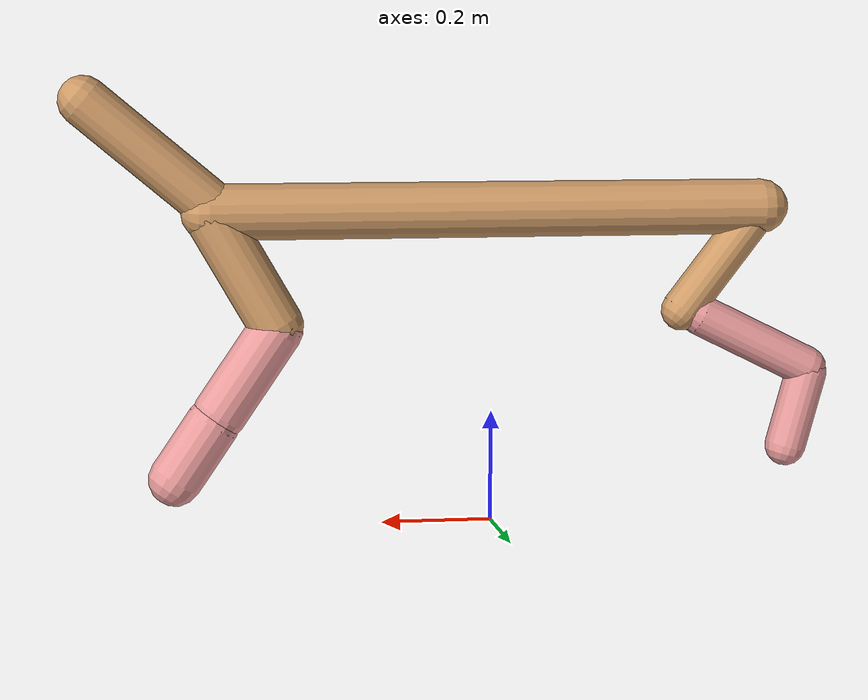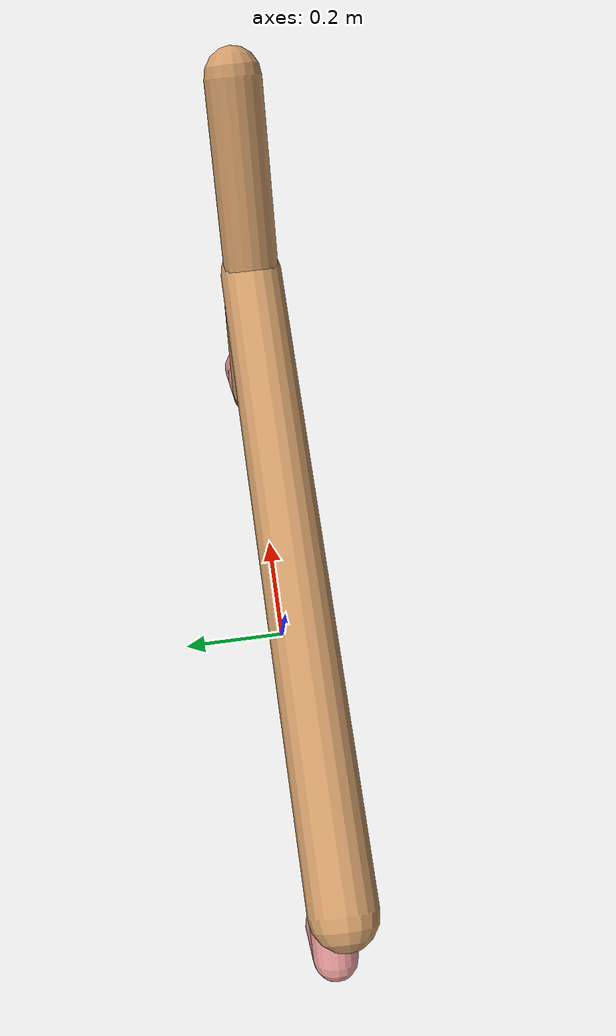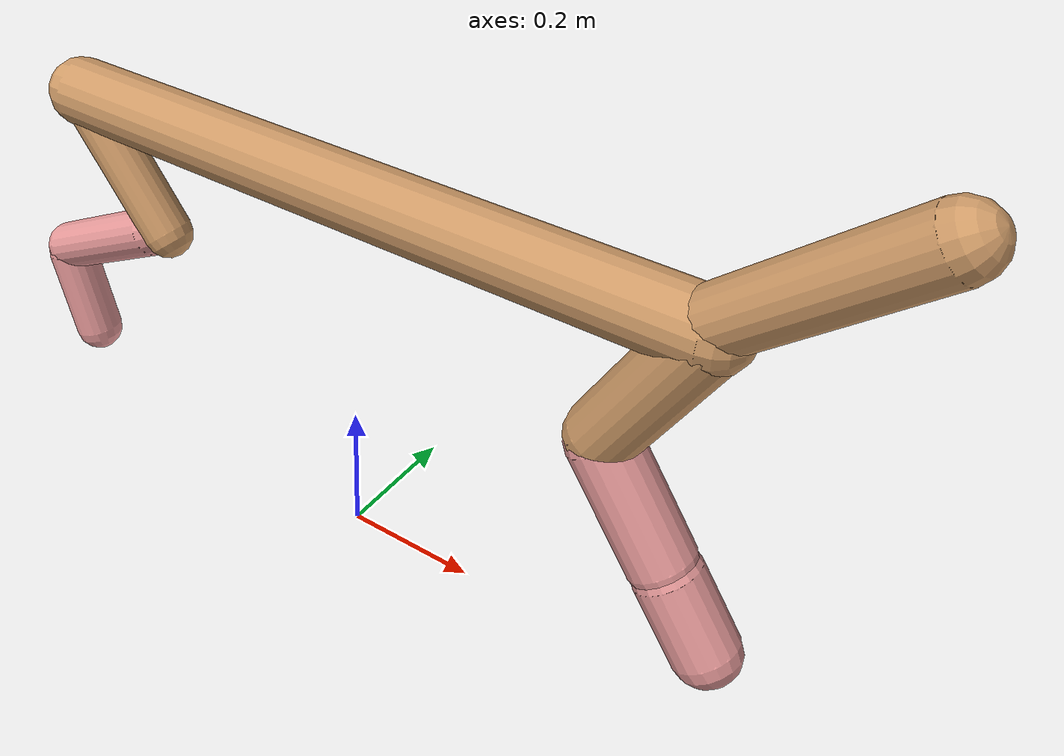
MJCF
<mujoco model="cheetah">
  <compiler angle="radian" coordinate="local" inertiafromgeom="true" settotalmass="14" />
  <default>
    <joint armature=".1" damping=".01" limited="true" solimplimit="0 .8 .03" solreflimit=".02 1" stiffness="8" />
    <geom conaffinity="0" condim="3" contype="1" friction="0.8 .1 .1" rgba="0.8 0.6 .4 1" solimp="0.0 0.8 0.01" solref="0.02 1" />
    <motor ctrllimited="true" ctrlrange="-1 1" />
  </default>
  <size nstack="300000" nuser_geom="1" />
  <option gravity="0 0 -9.81" timestep="0.01" />
  <worldbody>
    <body name="torso" pos="0.0 0.0 0.5673512146523528">
      <joint armature="0" axis="1 0 0" damping="0" limited="false" name="ignorex" pos="0 0 0" stiffness="0" type="slide" />
      <joint armature="0" axis="0 0 1" damping="0" limited="false" name="ignorez" pos="0 0 0" stiffness="0" type="slide" />
      <joint armature="0" axis="0 1 0" damping="0" limited="false" name="ignorey" pos="0 0 0" stiffness="0" type="hinge" />
      <geom fromto="-0.5 0.0 0.0 0.505124646398514 0.0 0.0" name="torso" size="0.050300157458727075" type="capsule" />
      <geom axisangle="0 1 0 .87" name="head" pos="0.6051246463985139 0.0 0.1" size="0.044806744422355195 0.15" type="capsule" />

      <body name="bthigh" pos="-.5 0 0">
        <joint axis="0 1 0" damping="6" name="bthigh" pos="0 0 0" range="-.52 1.05" stiffness="240" type="hinge" />
        <geom axisangle="0 1 0 -3.8" name="bthigh" pos="0.07859102477243349 0.0 -0.10216833220416353" size="0.037418787722038375 0.10988666987321825" type="capsule" />
        <body name="bshin" pos="0.11718204954486697 0.0 -0.19433666440832706">
          <joint axis="0 1 0" damping="4.5" name="bshin" pos="0 0 0" range="-.785 .785" stiffness="180" type="hinge" />
          <geom axisangle="0 1 0 -2.03" name="bshin" pos="-0.10751070631177576 0.0 -0.05375535315588788" rgba="0.9 0.6 0.6 1" size="0.037418787722038375 0.11367586538608786" type="capsule" />
          <body name="bfoot" pos="-0.2150214126235515 0.0 -0.10751070631177576">
            <joint axis="0 1 0" damping="3" name="bfoot" pos="0 0 0" range="-.4 .785" stiffness="120" type="hinge" />
            <geom axisangle="0 1 0 -.27" name="bfoot" pos="0.023274185953085922 0.0 -0.07525320124831116" rgba="0.9 0.6 0.6 1" size="0.037418787722038375 0.07123687564194839" type="capsule" />
            <inertial mass="10" />
          </body>
        </body>
      </body>
      <body name="fthigh" pos="0.505124646398514 0.0 0.0">
        <joint axis="0 1 0" damping="4.5" name="fthigh" pos="0 0 0" range="-1.5 0.8" stiffness="180" type="hinge" />
        <geom axisangle="0 1 0 .52" name="fthigh" pos="-0.060701424712848784 0.0 -0.10405958522202648" size="0.048685166281250775 0.11454572337736708" type="capsule" />
        <body name="fshin" pos="-0.12140284942569757 0.0 -0.20811917044405295">
          <joint axis="0 1 0" damping="3" name="fshin" pos="0 0 0" range="-1.2 1.1" stiffness="120" type="hinge" />
          <geom axisangle="0 1 0 -.6" name="fshin" pos="0.05638865194058851 0.0 -0.078076594994661" rgba="0.9 0.6 0.6 1" size="0.048685166281250775 0.09129208028572114" type="capsule" />
          <body name="ffoot" pos="0.11277730388117702 0.0 -0.156153189989322">
            <joint axis="0 1 0" damping="1.5" name="ffoot" pos="0 0 0" range="-3.1 -0.3" stiffness="60" type="hinge" />
            <geom axisangle="0 1 0 -.6" name="ffoot" pos="0.03974774201269053 0.0 -0.06182982090862972" rgba="0.9 0.6 0.6 1" size="0.048685166281250775 0.06028722283019321" type="capsule" />
            <inertial mass="10" />
          </body>
        </body>
      </body>
    </body>
  </worldbody>
  <actuator>
    <motor gear="120" joint="bthigh" name="bthigh" />
    <motor gear="90" joint="bshin" name="bshin" />
    <motor gear="60" joint="bfoot" name="bfoot" />
    <motor gear="120" joint="fthigh" name="fthigh" />
    <motor gear="60" joint="fshin" name="fshin" />
    <motor gear="30" joint="ffoot" name="ffoot" />
  </actuator>
</mujoco>
